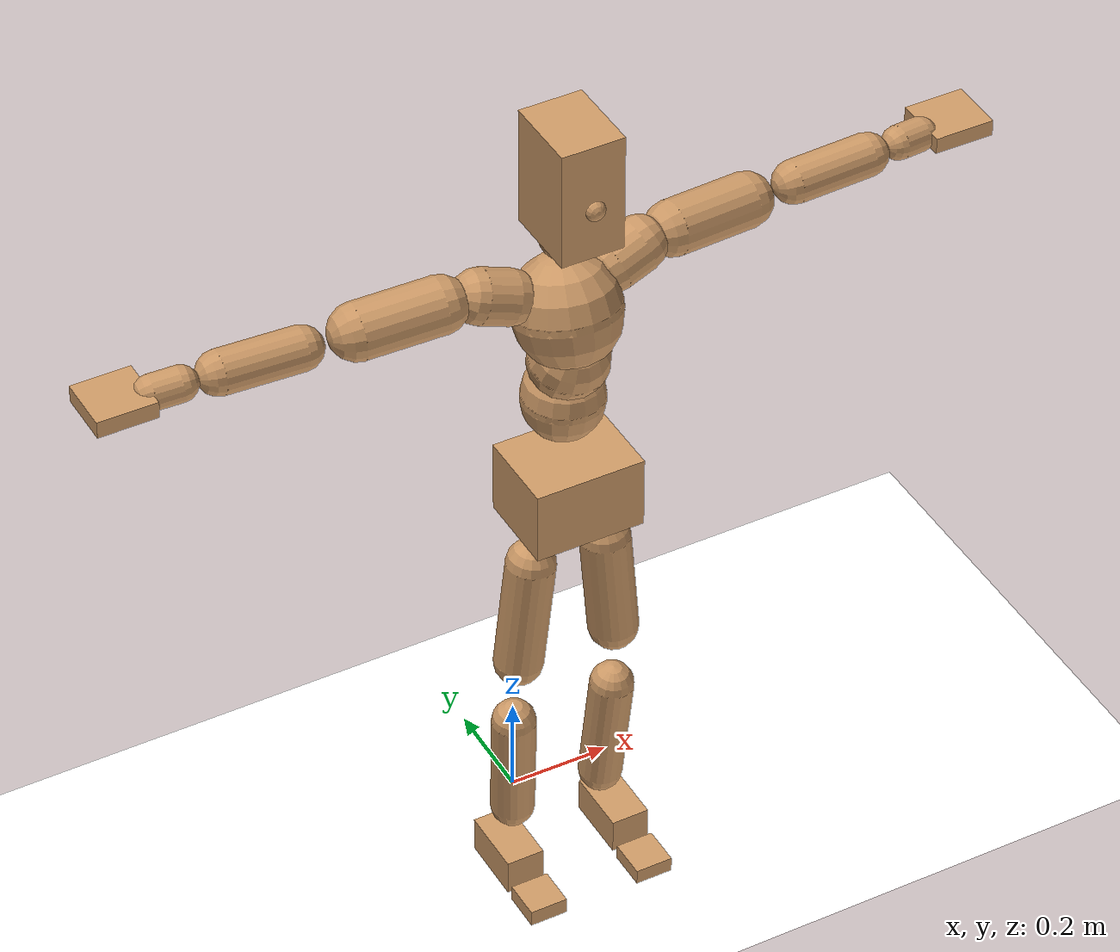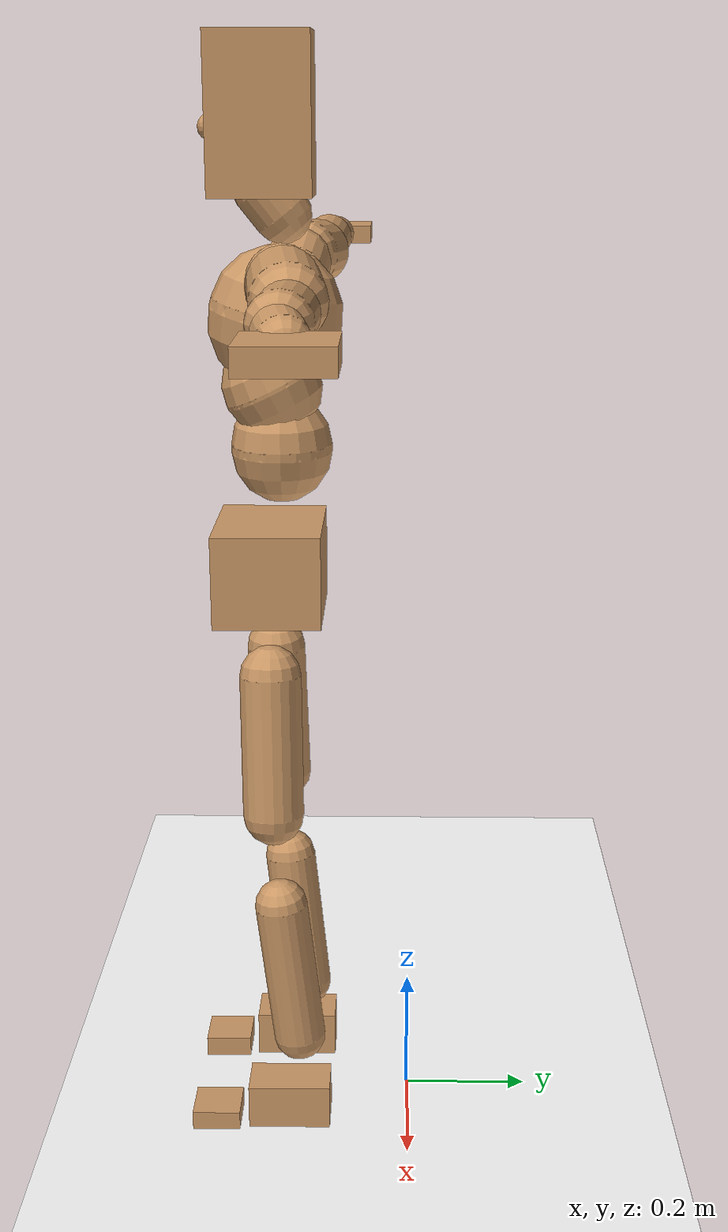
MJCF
<mujoco model="humanoid">
  <option integrator="implicitfast" />

  <visual>
    <global offwidth="1280" offheight="960" />
    <headlight active="1" ambient="0.34 0.34 0.34" diffuse="0.5 0.5 0.5" />
  </visual>

  <default>
    <joint damping="2" stiffness="2" armature="0.01" limited="true" solimplimit="0 .99 .01" />
    <geom condim="1" friction="0.7 0.005 0.0001" solimp=".99 .99 .003" solref="0.015 1" margin="0.001" rgba="0.8 0.6 .4 1" />
    <default class="smplcontact">
      <geom condim="3" friction="1. 0.005 0.0001" solref="0.015 1" solimp="0.98 0.98 0.001" priority="1" />
    </default>
    <default class="stiff_medium">
      <joint stiffness="10" />
    </default>
    <default class="stiff_medium_higher">
      <joint stiffness="50" />
    </default>
    <default class="stiff_high">
      <joint stiffness="100" />
    </default>
  </default>

  <asset>
    <texture type="skybox" builtin="gradient" rgb1="0.99 0.99 0.99" rgb2="0.608 0.828 0.892" width="100" />
    <texture builtin="flat" height="1278" mark="cross" markrgb="1 1 1" name="texgeom" random="0.01" rgb1="0.8 0.6 0.4" rgb2="0.8 0.6 0.4" type="cube" width="127" />
    <texture name="texplane" type="2d" builtin="checker" markrgb="1 1 1" rgb1="0.756 0.772 0.76" rgb2="0.6 0.6 0.6" width="100" height="100" />
    <material name="MatPlane" reflectance="0.5" texture="texplane" texrepeat="1 1" texuniform="true" />
    <material name="geom" texture="texgeom" texuniform="true" />
  </asset>

  <worldbody>
    <light name="tracking_light" pos="0 0 7" dir="0 0 -1" directional="true" cutoff="100" exponent="1" diffuse="1 1 1" specular="0.1 0.1 0.1" mode="trackcom" />
    <camera name="back" pos="0 3 2.4" xyaxes="-1 0 0 0 -1 2" mode="trackcom" />
    <camera name="side" pos="-3 0 2.4" xyaxes="0 -1 0 1 0 2" mode="trackcom" />
    <camera name="front_side" pos="-2.8 -2.8 0.8" xyaxes="0.5 -0.5 0 0.1 0.1 1" mode="trackcom" />
    <geom condim="3" name="floor" pos="0 0 0" rgba="1 1 1 1" size="100 100 .2" type="plane" material="MatPlane" />
    <body name="Pelvis" pos="-0.0018 -0.2233 0.93184" euler="90 0 0">
      <site name="Pelvis" size="0.01" />
      <freejoint name="Pelvis" />
      <geom type="box" pos="-0.0000 -0.0121 -0.0055" size="0.1069 0.0722 0.083" quat="1.0000 0.0000 0.0000 0.0000" density="3165.830099" name="Pelvis" />
      <body name="L_Hip" pos="0.0695 -0.0914 -0.0068">
        <joint name="L_Hip_x" type="hinge" pos="0 0 0" axis="1 0 0" stiffness="5.554494285714285" range="-160.0 22.92" class="stiff_medium" damping="8.195542597702891" armature="0.0053743801378210556"/>
        <joint name="L_Hip_y" type="hinge" pos="0 0 0" axis="0 1 0" stiffness="5.53058" range="-70.0 70.0" class="stiff_medium" damping="4.775965200753143" armature="0.004124313109801325"/>
        <joint name="L_Hip_z" type="hinge" pos="0 0 0" axis="0 0 1" stiffness="5.536174404761905" range="-28.65 90.0" class="stiff_medium" damping="5.455597172700658" armature="0.005376192716251588"/>
        <geom type="capsule" density="2040.816327" fromto="0.0069 -0.075 -0.0009 0.0274 -0.3002 -0.0036" size="0.0476625" name="L_Hip" />
        <body name="L_Knee" pos="0.0343 -0.3752 -0.0045">
          <joint name="L_Knee_x" type="hinge" pos="0 0 0" axis="1 0 0" range="-5.16 171.89" damping="4.197903091661377" armature="0.0051166875365785255" stiffness="1.0762816666666666"/>
          <joint name="L_Knee_y" type="hinge" pos="0 0 0" axis="0 1 0" range="-4.58 6.88" damping="3.7188163910746064" armature="0.003924180140034708" stiffness="1.101312476190476"/>
          <joint name="L_Knee_z" type="hinge" pos="0 0 0" axis="0 0 1" range="-6.88 4.58" damping="4.197475355837298" armature="0.0051249319014398335" stiffness="1.0743313095238096"/>
          <geom type="capsule" density="1234.567901" fromto="-0.0027 -0.0796 -0.0087 -0.0109 -0.3184 -0.035" size="0.0419275" name="L_Knee" />
          <body name="L_Ankle" pos="-0.0136 -0.398 -0.0437">
            <joint name="L_Ankle_x" type="hinge" pos="0 0 0" axis="1 0 0" range="-45.84 45.84" class="stiff_medium" damping="2.5950063347211563" armature="0.004018551942854063" stiffness="4.65484"/>
            <joint name="L_Ankle_y" type="hinge" pos="0 0 0" axis="0 1 0" range="-74.48 22.92" class="stiff_medium" damping="1.2901386446925456" armature="0.003973063455407271" stiffness="4.65484"/>
            <joint name="L_Ankle_z" type="hinge" pos="0 0 0" axis="0 0 1" range="-4.58 4.58" class="stiff_medium" damping="2.481693714623758" armature="0.00367526876040319" stiffness="4.65484"/>
            <geom type="box" pos="0.0233 -0.0239 0.0242" size="0.0374325 0.03596 0.065875" quat="1.0000 0.0000 0.0000 0.0000" density="449.071558" name="L_Ankle" class="smplcontact" />
            <body name="L_Toe" pos="0.0264 -0.0558 0.1193">
              <joint name="L_Toe_x" type="hinge" pos="0 0 0" axis="1 0 0" range="-91.67 22.92" armature="0.003502595584600244" damping="0.8075647845472361" stiffness="0.930968"/>
              <joint name="L_Toe_y" type="hinge" pos="0 0 0" axis="0 1 0" range="-4.58 4.58" armature="0.003293799136440615" damping="0.7831247147745812" stiffness="0.930968"/>
              <joint name="L_Toe_z" type="hinge" pos="0 0 0" axis="0 0 1" range="-4.58 4.58" armature="0.0028716239566773595" damping="0.7312167957179332" stiffness="0.930968"/>
              <geom type="box" pos="-0.003 0.0055 0.0248" size="0.037045 0.0155 0.03844" quat="1.0000 0.0000 0.0000 0.0000" density="423.206892" name="L_Toe" class="smplcontact" />
            </body>
          </body>
        </body>
      </body>
      <body name="R_Hip" pos="-0.0677 -0.0905 -0.0043">
        <joint name="R_Hip_x" type="hinge" pos="0 0 0" axis="1 0 0" stiffness="5.554494285714285" range="-160.0 22.92" class="stiff_medium" damping="8.195542597702891" armature="0.0053743801378210556"/>
        <joint name="R_Hip_y" type="hinge" pos="0 0 0" axis="0 1 0" stiffness="5.53058" range="-70.0 70.0" class="stiff_medium" damping="4.775965200753143" armature="0.004124313109801325"/>
        <joint name="R_Hip_z" type="hinge" pos="0 0 0" axis="0 0 1" stiffness="5.536174404761905" range="-90.0 28.65" class="stiff_medium" damping="5.455597172700658" armature="0.005376192716251588"/>
        <geom type="capsule" density="2040.816327" fromto="-0.0077 -0.0765 -0.0018 -0.0306 -0.3061 -0.0071" size="0.046965" name="R_Hip" />
        <body name="R_Knee" pos="-0.0383 -0.3826 -0.0089">
          <joint name="R_Knee_x" type="hinge" pos="0 0 0" axis="1 0 0" range="-5.16 171.89" damping="4.197903091661377" armature="0.0051166875365785255" stiffness="1.0762816666666666"/>
          <joint name="R_Knee_y" type="hinge" pos="0 0 0" axis="0 1 0" range="-6.88 4.58" damping="3.7188163910746064" armature="0.003924180140034708" stiffness="1.101312476190476"/>
          <joint name="R_Knee_z" type="hinge" pos="0 0 0" axis="0 0 1" range="-4.58 6.88" damping="4.197475355837298" armature="0.0051249319014398335" stiffness="1.0743313095238096"/>
          <geom type="capsule" density="1234.567901" fromto="0.0032 -0.0797 -0.0085 0.0126 -0.3187 -0.0338" size="0.0419275" name="R_Knee" />
          <body name="R_Ankle" pos="0.0158 -0.3984 -0.0423">
            <joint name="R_Ankle_x" type="hinge" pos="0 0 0" axis="1 0 0" range="-45.84 45.84" class="stiff_medium" damping="2.5950063347211563" armature="0.004018551942854063" stiffness="4.65484"/>
            <joint name="R_Ankle_y" type="hinge" pos="0 0 0" axis="0 1 0" range="-22.92 74.48" class="stiff_medium" damping="1.2901386446925456" armature="0.003973063455407271" stiffness="4.65484"/>
            <joint name="R_Ankle_z" type="hinge" pos="0 0 0" axis="0 0 1" range="-4.58 4.58" class="stiff_medium" damping="2.481693714623758" armature="0.00367526876040319" stiffness="4.65484"/>
            <geom type="box" pos="-0.0212 -0.0174 0.0256" size="0.0374325 0.037045 0.0670375" quat="1.0000 0.0000 0.0000 0.0000" density="434.700981" name="R_Ankle" class="smplcontact" />
            <body name="R_Toe" pos="-0.0254 -0.0481 0.1233">
              <joint name="R_Toe_x" type="hinge" pos="0 0 0" axis="1 0 0" range="-91.67 22.92" armature="0.003502595584600244" damping="0.8075647845472361" stiffness="0.930968"/>
              <joint name="R_Toe_y" type="hinge" pos="0 0 0" axis="0 1 0" range="-4.58 4.58" armature="0.003293799136440615" damping="0.7831247147745812" stiffness="0.930968"/>
              <joint name="R_Toe_z" type="hinge" pos="0 0 0" axis="0 0 1" range="-4.58 4.58" armature="0.0028716239566773595" damping="0.7312167957179332" stiffness="0.930968"/>
              <geom type="box" pos="0.0042 0.0045 0.0227" size="0.0371225 0.01674 0.0382075" quat="1.0000 0.0000 0.0000 0.0000" density="407.384095" name="R_Toe" class="smplcontact" />
            </body>
          </body>
        </body>
      </body>
      <body name="Torso" pos="-0.0025 0.109 -0.0267">
        <joint name="Torso_x" type="hinge" pos="0 0 0" axis="1 0 0" range="-25.78 57.3" class="stiff_medium" damping="15.0" armature="0.010000000000000002" stiffness="10.0"/>
        <joint name="Torso_y" type="hinge" pos="0 0 0" axis="0 1 0" range="-57.3 57.3" class="stiff_high" damping="20.0" armature="0.010000000000000002" stiffness="100.0"/>
        <joint name="Torso_z" type="hinge" pos="0 0 0" axis="0 0 1" range="-34.38 34.38" class="stiff_high" damping="20.0" armature="0.010000000000000002" stiffness="100.0"/>
        <geom type="capsule" density="2040.816327" fromto="0.0025 0.0608 0.0005 0.003 0.0743 0.0006" size="0.0769" name="Torso" />
        <body name="Spine" pos="0.0055 0.1352 0.0011">
          <joint name="Spine_x" type="hinge" pos="0 0 0" axis="1 0 0" stiffness="10.0" range="-25.78 57.3" class="stiff_medium" damping="15.000000000000004" armature="0.010000000000000007"/>
          <joint name="Spine_y" type="hinge" pos="0 0 0" axis="0 1 0" stiffness="10.0" range="-57.3 57.3" class="stiff_high" damping="8.0" armature="0.010000000000000002"/>
          <joint name="Spine_z" type="hinge" pos="0 0 0" axis="0 0 1" stiffness="20.0" range="-34.38 34.38" class="stiff_high" damping="12.000000000000004" armature="0.010000000000000007"/>
          <geom type="capsule" density="2040.816327" fromto="0.0007 0.0238 0.0114 0.0008 0.0291 0.014" size="0.0755" name="Spine" />
          <body name="Chest" pos="0.0015 0.0529 0.0254">
            <joint name="Chest_x" type="hinge" pos="0 0 0" axis="1 0 0" stiffness="10.0" range="-25.78 57.3" class="stiff_medium" damping="14.999999999999996" armature="0.009999999999999997"/>
            <joint name="Chest_y" type="hinge" pos="0 0 0" axis="0 1 0" stiffness="10.0" range="-57.3 57.3" class="stiff_high" damping="8.000000000000002" armature="0.010000000000000005"/>
            <joint name="Chest_z" type="hinge" pos="0 0 0" axis="0 0 1" stiffness="20.0" range="-34.38 34.38" class="stiff_high" damping="12.0" armature="0.01"/>
            <geom type="capsule" density="2040.816327" fromto="-0.0009 0.0682 -0.0173 -0.001 0.0833 -0.0212" size="0.1002" name="Chest" />
            <body name="Neck" pos="-0.0028 0.2139 -0.0429">
              <joint name="Neck_x" type="hinge" pos="0 0 0" axis="1 0 0" range="-28.65 57.3" class="stiff_medium_higher" damping="9.999999999999993" armature="0.009999999999999988" stiffness="50.0"/>
              <joint name="Neck_y" type="hinge" pos="0 0 0" axis="0 1 0" range="-40.11 40.11" class="stiff_medium_higher" damping="10.0" armature="0.010000000000000002" stiffness="50.0"/>
              <joint name="Neck_z" type="hinge" pos="0 0 0" axis="0 0 1" range="-40.11 40.11" class="stiff_medium_higher" damping="9.999999999999998" armature="0.009999999999999995" stiffness="50.0"/>
              <geom type="capsule" density="1000" fromto="0.001 0.013 0.0103 0.0041 0.052 0.0411" size="0.0436" name="Neck" />
              <body name="Head" pos="0.0052 0.065 0.0513">
                <joint name="Head_x" type="hinge" pos="0 0 0" axis="1 0 0" range="-28.65 57.3" class="stiff_medium_higher" damping="1.9999999999999967" armature="0.009999999999999967" stiffness="50.0"/>
                <joint name="Head_y" type="hinge" pos="0 0 0" axis="0 1 0" range="-40.11 40.11" class="stiff_medium_higher" damping="1.9999999999999998" armature="0.009999999999999998" stiffness="50.0"/>
                <joint name="Head_z" type="hinge" pos="0 0 0" axis="0 0 1" range="-40.11 40.11" class="stiff_medium_higher" damping="1.9999999999999978" armature="0.00999999999999998" stiffness="50.0"/>
                <geom type="box" pos="-0.0042 0.0876 -0.0116" size="0.0606 0.1154 0.076" quat="1.0000 0.0000 0.0000 0.0000" density="1018.069894" name="Head" />
                <geom type="capsule" name="nose" size="0.02 0.01" pos="0 0.07 0.05" quat="1 0 0 0" mass="0" contype="0" conaffinity="0" />
              </body>
            </body>
            <body name="L_Thorax" pos="0.0788 0.1217 -0.0341">
              <joint name="L_Thorax_x" type="hinge" pos="0 0 0" axis="1 0 0" range="-10.89 4.58" class="stiff_medium_higher" damping="20.000000000000142" armature="0.010000000000000142" stiffness="50.0"/>
              <joint name="L_Thorax_y" type="hinge" pos="0 0 0" axis="0 1 0" range="-28.65 17.19" class="stiff_medium_higher" damping="20.000000000000004" armature="0.010000000000000005" stiffness="50.0"/>
              <joint name="L_Thorax_z" type="hinge" pos="0 0 0" axis="0 0 1" range="-31.51 40.11" class="stiff_medium_higher" damping="20.000000000000004" armature="0.010000000000000007" stiffness="50.0"/>
              <geom type="capsule" density="1000" fromto="0.0182 0.0061 -0.0018 0.0728 0.0244 -0.0071" size="0.0521" name="L_Thorax" />
              <body name="L_Shoulder" pos="0.091 0.0305 -0.0089">
                <joint name="L_Shoulder_x" type="hinge" pos="0 0 0" axis="1 0 0" range="-97.4 97.4" class="stiff_medium" damping="6.000000000000092" armature="0.010000000000000307" stiffness="10.0"/>
                <joint name="L_Shoulder_y" type="hinge" pos="0 0 0" axis="0 1 0" range="-108.86 80.21" class="stiff_medium" damping="6.0" armature="0.010000000000000002" stiffness="10.0"/>
                <joint name="L_Shoulder_z" type="hinge" pos="0 0 0" axis="0 0 1" range="-97.4 85.94" class="stiff_medium" damping="6.000000000000003" armature="0.01000000000000001" stiffness="10.0"/>
                <geom type="capsule" density="1000" fromto="0.0519 -0.0026 -0.0055 0.2077 -0.0102 -0.022" size="0.0517" name="L_Shoulder" />
                <body name="L_Elbow" pos="0.2596 -0.0128 -0.0275">
                  <joint name="L_Elbow_x" type="hinge" pos="0 0 0" axis="1 0 0" range="-17.19 4.58" damping="4.9999999999999645" armature="0.009999999999999858" stiffness="2.0"/>
                  <joint name="L_Elbow_y" type="hinge" pos="0 0 0" axis="0 1 0" range="-180.0 17.19" damping="5.000000000000004" armature="0.010000000000000021" stiffness="2.0"/>
                  <joint name="L_Elbow_z" type="hinge" pos="0 0 0" axis="0 0 1" range="-100.84 4.58" damping="5.000000000000004" armature="0.010000000000000018" stiffness="2.0"/>
                  <geom type="capsule" density="1000" fromto="0.0498 0.0018 -0.0002 0.1994 0.0072 -0.0009" size="0.0405" name="L_Elbow" />
                  <body name="L_Wrist" pos="0.2492 0.009 -0.0012">
                    <joint name="L_Wrist_x" type="hinge" pos="0 0 0" axis="1 0 0" range="-180.0 22.92" armature="0.009999999999999789" damping="1.9999999999999787" stiffness="2.0"/>
                    <joint name="L_Wrist_y" type="hinge" pos="0 0 0" axis="0 1 0" range="-17.19 17.19" armature="0.009999999999999957" damping="1.9999999999999956" stiffness="2.0"/>
                    <joint name="L_Wrist_z" type="hinge" pos="0 0 0" axis="0 0 1" range="-22.92 22.92" armature="0.009999999999999995" damping="1.9999999999999996" stiffness="2.0"/>
                    <geom type="capsule" density="1000" fromto="0.0168 -0.0016 -0.003 0.0672 -0.0065 -0.012" size="0.0318" name="L_Wrist" class="smplcontact" />
                    <body name="L_Hand" pos="0.084 -0.0082 -0.0149">
                      <joint name="L_Hand_x" type="hinge" pos="0 0 0" axis="1 0 0" range="-17.19 17.19" armature="0.009999999999999908" damping="1.9999999999999907" stiffness="2.0"/>
                      <joint name="L_Hand_y" type="hinge" pos="0 0 0" axis="0 1 0" range="-51.57 51.57" armature="0.009999999999999879" damping="1.9999999999999878" stiffness="2.0"/>
                      <joint name="L_Hand_z" type="hinge" pos="0 0 0" axis="0 0 1" range="-91.67 91.67" armature="0.009999999999999445" damping="1.9999999999999445" stiffness="2.0"/>
                      <geom type="box" pos="0.0493 0.001 -0.0058" size="0.0585 0.0158 0.0538" quat="1.0000 0.0000 0.0000 0.0000" density="400.552564" name="L_Hand" class="smplcontact" />
                    </body>
                  </body>
                </body>
              </body>
            </body>
            <body name="R_Thorax" pos="-0.0818 0.1188 -0.0386">
              <joint name="R_Thorax_x" type="hinge" pos="0 0 0" axis="1 0 0" range="-10.89 4.58" class="stiff_medium_higher" damping="20.000000000000142" armature="0.010000000000000142" stiffness="50.0"/>
              <joint name="R_Thorax_y" type="hinge" pos="0 0 0" axis="0 1 0" range="-17.19 28.65" class="stiff_medium_higher" damping="20.000000000000004" armature="0.010000000000000005" stiffness="50.0"/>
              <joint name="R_Thorax_z" type="hinge" pos="0 0 0" axis="0 0 1" range="-40.11 31.51" class="stiff_medium_higher" damping="20.000000000000004" armature="0.010000000000000007" stiffness="50.0"/>
              <geom type="capsule" density="1000" fromto="-0.0192 0.0065 -0.0018 -0.0768 0.026 -0.0073" size="0.0511" name="R_Thorax" />
              <body name="R_Shoulder" pos="-0.096 0.0326 -0.0091">
                <joint name="R_Shoulder_x" type="hinge" pos="0 0 0" axis="1 0 0" range="-97.4 97.4" class="stiff_medium" damping="6.000000000000092" armature="0.010000000000000307" stiffness="10.0"/>
                <joint name="R_Shoulder_y" type="hinge" pos="0 0 0" axis="0 1 0" range="-80.21 108.86" class="stiff_medium" damping="6.0" armature="0.010000000000000002" stiffness="10.0"/>
                <joint name="R_Shoulder_z" type="hinge" pos="0 0 0" axis="0 0 1" range="-85.94 97.4" class="stiff_medium" damping="6.000000000000003" armature="0.01000000000000001" stiffness="10.0"/>
                <geom type="capsule" density="1000" fromto="-0.0507 -0.0027 -0.0043 -0.203 -0.0107 -0.0171" size="0.0531" name="R_Shoulder" />
                <body name="R_Elbow" pos="-0.2537 -0.0133 -0.0214">
                  <joint name="R_Elbow_x" type="hinge" pos="0 0 0" axis="1 0 0" range="-17.19 4.58" damping="4.9999999999999645" armature="0.009999999999999858" stiffness="2.0"/>
                  <joint name="R_Elbow_y" type="hinge" pos="0 0 0" axis="0 1 0" range="-17.19 180.0" damping="5.000000000000004" armature="0.010000000000000021" stiffness="2.0"/>
                  <joint name="R_Elbow_z" type="hinge" pos="0 0 0" axis="0 0 1" range="-4.58 100.84" damping="5.000000000000004" armature="0.010000000000000018" stiffness="2.0"/>
                  <geom type="capsule" density="1000" fromto="-0.0511 0.0016 -0.0011 -0.2042 0.0062 -0.0044" size="0.0408" name="R_Elbow" />
                  <body name="R_Wrist" pos="-0.2553 0.0078 -0.0056">
                    <joint name="R_Wrist_x" type="hinge" pos="0 0 0" axis="1 0 0" range="-180.0 22.92" armature="0.009999999999999789" damping="1.9999999999999787" stiffness="2.0"/>
                    <joint name="R_Wrist_y" type="hinge" pos="0 0 0" axis="0 1 0" range="-17.19 17.19" armature="0.009999999999999957" damping="1.9999999999999956" stiffness="2.0"/>
                    <joint name="R_Wrist_z" type="hinge" pos="0 0 0" axis="0 0 1" range="-22.92 22.92" armature="0.009999999999999995" damping="1.9999999999999996" stiffness="2.0"/>
                    <geom type="capsule" density="1000" fromto="-0.0169 -0.0012 -0.0021 -0.0677 -0.0049 -0.0083" size="0.0326" name="R_Wrist" class="smplcontact" />
                    <body name="R_Hand" pos="-0.0846 -0.0061 -0.0103">
                      <joint name="R_Hand_x" type="hinge" pos="0 0 0" axis="1 0 0" range="-17.19 17.19" armature="0.009999999999999908" damping="1.9999999999999907" stiffness="2.0"/>
                      <joint name="R_Hand_y" type="hinge" pos="0 0 0" axis="0 1 0" range="-51.57 51.57" armature="0.009999999999999879" damping="1.9999999999999878" stiffness="2.0"/>
                      <joint name="R_Hand_z" type="hinge" pos="0 0 0" axis="0 0 1" range="-91.67 91.67" armature="0.009999999999999445" damping="1.9999999999999445" stiffness="2.0"/>
                      <geom type="box" pos="-0.0462 -0.0009 -0.0079" size="0.0569 0.0164 0.0546" quat="1.0000 0.0000 0.0000 0.0000" density="403.679611" name="R_Hand" class="smplcontact" />
                    </body>
                  </body>
                </body>
              </body>
            </body>
          </body>
        </body>
      </body>
    </body>
  </worldbody>
  <actuator>
    <general name="L_Hip_x" joint="L_Hip_x" biastype="affine" gainprm="159.5973199142497" biasprm="-119.60201516425404 -99.98089714285713 -1.0927390130270522" ctrllimited="true" ctrlrange="-1 1" forcerange="-199.96179428571426 199.96179428571426" />
    <general name="L_Hip_y" joint="L_Hip_y" biastype="affine" gainprm="121.62380648663445" biasprm="0.0 -99.55044 -0.9551930401506287" ctrllimited="true" ctrlrange="-1 1" forcerange="-199.10088 199.10088" />
    <general name="L_Hip_z" joint="L_Hip_z" biastype="affine" gainprm="103.18044170731912" biasprm="53.35120184360748 -99.65113928571428 -1.0911194345401316" ctrllimited="true" ctrlrange="-1 1" forcerange="-199.30227857142856 199.30227857142856" />
    <general name="L_Knee_x" joint="L_Knee_x" biastype="affine" gainprm="149.66207252302192" biasprm="140.938476993863 -96.86534999999999 -1.0494757729153443" ctrllimited="true" ctrlrange="-1 1" forcerange="-193.73069999999998 193.73069999999998" />
    <general name="L_Knee_y" joint="L_Knee_y" biastype="affine" gainprm="9.912542403611933" biasprm="1.9894282310914004 -99.11812285714284 -0.9297040977686516" ctrllimited="true" ctrlrange="-1 1" forcerange="-198.23624571428567 198.23624571428567" />
    <general name="L_Knee_z" joint="L_Knee_z" biastype="affine" gainprm="9.669694016379104" biasprm="-1.940689025974864 -96.68981785714287 -1.0493688389593245" ctrllimited="true" ctrlrange="-1 1" forcerange="-193.37963571428574 193.37963571428574" />
    <general name="L_Ankle_x" joint="L_Ankle_x" biastype="affine" gainprm="33.51731675038152" biasprm="0.0 -41.89356 -0.8650021115737188" ctrllimited="true" ctrlrange="-1 1" forcerange="-83.78712 83.78712" />
    <general name="L_Ankle_y" joint="L_Ankle_y" biastype="affine" gainprm="35.60849314449345" biasprm="-18.849834769302696 -41.89356 -0.8600924297950304" ctrllimited="true" ctrlrange="-1 1" forcerange="-83.78712 83.78712" />
    <general name="L_Ankle_z" joint="L_Ankle_z" biastype="affine" gainprm="3.3488069528086237" biasprm="0.0 -41.89356 -0.8272312382079193" ctrllimited="true" ctrlrange="-1 1" forcerange="-83.78712 83.78712" />
    <general name="L_Toe_x" joint="L_Toe_x" biastype="affine" gainprm="33.51439202815198" biasprm="-20.10746532799938 -33.514848 -0.32302591381889445" ctrllimited="true" ctrlrange="-1 1" forcerange="-67.029696 67.029696" />
    <general name="L_Toe_y" joint="L_Toe_y" biastype="affine" gainprm="2.679045562246899" biasprm="0.0 -33.514848 -0.3132498859098325" ctrllimited="true" ctrlrange="-1 1" forcerange="-67.029696 67.029696" />
    <general name="L_Toe_z" joint="L_Toe_z" biastype="affine" gainprm="2.679045562246899" biasprm="0.0 -33.514848 -0.29248671828717326" ctrllimited="true" ctrlrange="-1 1" forcerange="-67.029696 67.029696" />
    <general name="R_Hip_x" joint="R_Hip_x" biastype="affine" gainprm="159.5973199142497" biasprm="-119.60201516425404 -99.98089714285713 -1.0927390130270522" ctrllimited="true" ctrlrange="-1 1" forcerange="-199.96179428571426 199.96179428571426" />
    <general name="R_Hip_y" joint="R_Hip_y" biastype="affine" gainprm="121.62380648663445" biasprm="0.0 -99.55044 -0.9551930401506287" ctrllimited="true" ctrlrange="-1 1" forcerange="-199.10088 199.10088" />
    <general name="R_Hip_z" joint="R_Hip_z" biastype="affine" gainprm="103.18044170731912" biasprm="-53.35120184360748 -99.65113928571428 -1.0911194345401316" ctrllimited="true" ctrlrange="-1 1" forcerange="-199.30227857142856 199.30227857142856" />
    <general name="R_Knee_x" joint="R_Knee_x" biastype="affine" gainprm="149.66207252302192" biasprm="140.938476993863 -96.86534999999999 -1.0494757729153443" ctrllimited="true" ctrlrange="-1 1" forcerange="-193.73069999999998 193.73069999999998" />
    <general name="R_Knee_y" joint="R_Knee_y" biastype="affine" gainprm="9.912542403611933" biasprm="-1.9894282310914004 -99.11812285714284 -0.9297040977686516" ctrllimited="true" ctrlrange="-1 1" forcerange="-198.23624571428567 198.23624571428567" />
    <general name="R_Knee_z" joint="R_Knee_z" biastype="affine" gainprm="9.669694016379104" biasprm="1.940689025974864 -96.68981785714287 -1.0493688389593245" ctrllimited="true" ctrlrange="-1 1" forcerange="-193.37963571428574 193.37963571428574" />
    <general name="R_Ankle_x" joint="R_Ankle_x" biastype="affine" gainprm="33.51731675038152" biasprm="0.0 -41.89356 -0.8650021115737188" ctrllimited="true" ctrlrange="-1 1" forcerange="-83.78712 83.78712" />
    <general name="R_Ankle_y" joint="R_Ankle_y" biastype="affine" gainprm="35.60849314449345" biasprm="18.849834769302696 -41.89356 -0.8600924297950304" ctrllimited="true" ctrlrange="-1 1" forcerange="-83.78712 83.78712" />
    <general name="R_Ankle_z" joint="R_Ankle_z" biastype="affine" gainprm="3.3488069528086237" biasprm="0.0 -41.89356 -0.8272312382079193" ctrllimited="true" ctrlrange="-1 1" forcerange="-83.78712 83.78712" />
    <general name="R_Toe_x" joint="R_Toe_x" biastype="affine" gainprm="33.51439202815198" biasprm="-20.10746532799938 -33.514848 -0.32302591381889445" ctrllimited="true" ctrlrange="-1 1" forcerange="-67.029696 67.029696" />
    <general name="R_Toe_y" joint="R_Toe_y" biastype="affine" gainprm="2.679045562246899" biasprm="0.0 -33.514848 -0.3132498859098325" ctrllimited="true" ctrlrange="-1 1" forcerange="-67.029696 67.029696" />
    <general name="R_Toe_z" joint="R_Toe_z" biastype="affine" gainprm="2.679045562246899" biasprm="0.0 -33.514848 -0.29248671828717326" ctrllimited="true" ctrlrange="-1 1" forcerange="-67.029696 67.029696" />
    <general name="Torso_x" joint="Torso_x" biastype="affine" gainprm="174.00234510682668" biasprm="66.0153336274335 -240.0 -4.0" ctrllimited="true" ctrlrange="-1 1" forcerange="-360.0 360.0" />
    <general name="Torso_y" joint="Torso_y" biastype="affine" gainprm="240.0176787342602" biasprm="0.0 -240.0 -4.0" ctrllimited="true" ctrlrange="-1 1" forcerange="-360.0 360.0" />
    <general name="Torso_z" joint="Torso_z" biastype="affine" gainprm="144.01060724055614" biasprm="0.0 -240.0 -4.0" ctrllimited="true" ctrlrange="-1 1" forcerange="-360.0 360.0" />
    <general name="Spine_x" joint="Spine_x" biastype="affine" gainprm="174.00234510682668" biasprm="66.0153336274335 -240.0 -4.000000000000001" ctrllimited="true" ctrlrange="-1 1" forcerange="-360.0 360.0" />
    <general name="Spine_y" joint="Spine_y" biastype="affine" gainprm="240.0176787342602" biasprm="0.0 -240.0 -4.0" ctrllimited="true" ctrlrange="-1 1" forcerange="-360.0 360.0" />
    <general name="Spine_z" joint="Spine_z" biastype="affine" gainprm="144.01060724055614" biasprm="0.0 -240.0 -4.000000000000001" ctrllimited="true" ctrlrange="-1 1" forcerange="-360.0 360.0" />
    <general name="Chest_x" joint="Chest_x" biastype="affine" gainprm="174.00234510682668" biasprm="66.0153336274335 -240.0 -3.999999999999999" ctrllimited="true" ctrlrange="-1 1" forcerange="-360.0 360.0" />
    <general name="Chest_y" joint="Chest_y" biastype="affine" gainprm="240.0176787342602" biasprm="0.0 -240.0 -4.000000000000001" ctrllimited="true" ctrlrange="-1 1" forcerange="-360.0 360.0" />
    <general name="Chest_z" joint="Chest_z" biastype="affine" gainprm="144.01060724055614" biasprm="0.0 -240.0 -4.0" ctrllimited="true" ctrlrange="-1 1" forcerange="-360.0 360.0" />
    <general name="Neck_x" joint="Neck_x" biastype="affine" gainprm="27.00198885760427" biasprm="9.000662952534757 -36.0 -0.7999999999999995" ctrllimited="true" ctrlrange="-1 1" forcerange="-72.0 72.0" />
    <general name="Neck_y" joint="Neck_y" biastype="affine" gainprm="25.20185626709732" biasprm="0.0 -36.0 -0.8" ctrllimited="true" ctrlrange="-1 1" forcerange="-72.0 72.0" />
    <general name="Neck_z" joint="Neck_z" biastype="affine" gainprm="25.20185626709732" biasprm="0.0 -36.0 -0.7999999999999998" ctrllimited="true" ctrlrange="-1 1" forcerange="-72.0 72.0" />
    <general name="Head_x" joint="Head_x" biastype="affine" gainprm="18.001325905069514" biasprm="6.000441968356505 -24.0 -0.7999999999999987" ctrllimited="true" ctrlrange="-1 1" forcerange="-48.0 48.0" />
    <general name="Head_y" joint="Head_y" biastype="affine" gainprm="16.801237511398213" biasprm="0.0 -24.0 -0.7999999999999999" ctrllimited="true" ctrlrange="-1 1" forcerange="-48.0 48.0" />
    <general name="Head_z" joint="Head_z" biastype="affine" gainprm="16.801237511398213" biasprm="0.0 -24.0 -0.7999999999999992" ctrllimited="true" ctrlrange="-1 1" forcerange="-48.0 48.0" />
    <general name="L_Thorax_x" joint="L_Thorax_x" biastype="affine" gainprm="16.200146117011364" biasprm="-6.6078165480505335 -120.0 -1.6000000000000114" ctrllimited="true" ctrlrange="-1 1" forcerange="-240.0 240.0" />
    <general name="L_Thorax_y" joint="L_Thorax_y" biastype="affine" gainprm="48.00353574685204" biasprm="-12.00088393671301 -120.0 -1.6000000000000005" ctrllimited="true" ctrlrange="-1 1" forcerange="-240.0 240.0" />
    <general name="L_Thorax_z" joint="L_Thorax_z" biastype="affine" gainprm="75.00028861670033" biasprm="9.00589894029074 -120.0 -1.6000000000000005" ctrllimited="true" ctrlrange="-1 1" forcerange="-240.0 240.0" />
    <general name="L_Shoulder_x" joint="L_Shoulder_x" biastype="affine" gainprm="81.5976331892389" biasprm="0.0 -48.0 -1.6000000000000245" ctrllimited="true" ctrlrange="-1 1" forcerange="-96.0 96.0" />
    <general name="L_Shoulder_y" joint="L_Shoulder_y" biastype="affine" gainprm="79.19745640189629" biasprm="-12.00088393671301 -48.0 -1.6" ctrllimited="true" ctrlrange="-1 1" forcerange="-96.0 96.0" />
    <general name="L_Shoulder_z" joint="L_Shoulder_z" biastype="affine" gainprm="76.79727961455369" biasprm="-4.800353574685214 -48.0 -1.6000000000000008" ctrllimited="true" ctrlrange="-1 1" forcerange="-96.0 96.0" />
    <general name="L_Elbow_x" joint="L_Elbow_x" biastype="affine" gainprm="13.67849441372996" biasprm="-7.923096672353461 -72.0 -0.7999999999999944" ctrllimited="true" ctrlrange="-1 1" forcerange="-144.0 144.0" />
    <general name="L_Elbow_y" joint="L_Elbow_y" biastype="affine" gainprm="123.89813107227425" biasprm="-102.29653998619085 -72.0 -0.8000000000000007" ctrllimited="true" ctrlrange="-1 1" forcerange="-144.0 144.0" />
    <general name="L_Elbow_z" joint="L_Elbow_z" biastype="affine" gainprm="66.23733950828719" biasprm="-60.4819417669107 -72.0 -0.8000000000000007" ctrllimited="true" ctrlrange="-1 1" forcerange="-144.0 144.0" />
    <general name="L_Wrist_x" joint="L_Wrist_x" biastype="affine" gainprm="21.24973270888136" biasprm="-16.449379134196157 -12.0 -0.7999999999999915" ctrllimited="true" ctrlrange="-1 1" forcerange="-24.0 24.0" />
    <general name="L_Wrist_y" joint="L_Wrist_y" biastype="affine" gainprm="3.6002651810139037" biasprm="0.0 -12.0 -0.7999999999999983" ctrllimited="true" ctrlrange="-1 1" forcerange="-24.0 24.0" />
    <general name="L_Wrist_z" joint="L_Wrist_z" biastype="affine" gainprm="4.800353574685205" biasprm="0.0 -12.0 -0.7999999999999998" ctrllimited="true" ctrlrange="-1 1" forcerange="-24.0 24.0" />
    <general name="L_Hand_x" joint="L_Hand_x" biastype="affine" gainprm="3.6002651810139037" biasprm="0.0 -12.0 -0.7999999999999963" ctrllimited="true" ctrlrange="-1 1" forcerange="-24.0 24.0" />
    <general name="L_Hand_y" joint="L_Hand_y" biastype="affine" gainprm="10.800795543041708" biasprm="0.0 -12.0 -0.7999999999999952" ctrllimited="true" ctrlrange="-1 1" forcerange="-24.0 24.0" />
    <general name="L_Hand_z" joint="L_Hand_z" biastype="affine" gainprm="19.199319903638422" biasprm="0.0 -12.0 -0.7999999999999778" ctrllimited="true" ctrlrange="-1 1" forcerange="-24.0 24.0" />
    <general name="R_Thorax_x" joint="R_Thorax_x" biastype="affine" gainprm="16.200146117011364" biasprm="-6.6078165480505335 -120.0 -1.6000000000000114" ctrllimited="true" ctrlrange="-1 1" forcerange="-240.0 240.0" />
    <general name="R_Thorax_y" joint="R_Thorax_y" biastype="affine" gainprm="48.00353574685204" biasprm="12.000883936713002 -120.0 -1.6000000000000005" ctrllimited="true" ctrlrange="-1 1" forcerange="-240.0 240.0" />
    <general name="R_Thorax_z" joint="R_Thorax_z" biastype="affine" gainprm="75.00028861670033" biasprm="-9.00589894029074 -120.0 -1.6000000000000005" ctrllimited="true" ctrlrange="-1 1" forcerange="-240.0 240.0" />
    <general name="R_Shoulder_x" joint="R_Shoulder_x" biastype="affine" gainprm="81.5976331892389" biasprm="0.0 -48.0 -1.6000000000000245" ctrllimited="true" ctrlrange="-1 1" forcerange="-96.0 96.0" />
    <general name="R_Shoulder_y" joint="R_Shoulder_y" biastype="affine" gainprm="79.19745640189629" biasprm="12.00088393671301 -48.0 -1.6" ctrllimited="true" ctrlrange="-1 1" forcerange="-96.0 96.0" />
    <general name="R_Shoulder_z" joint="R_Shoulder_z" biastype="affine" gainprm="76.79727961455369" biasprm="4.800353574685204 -48.0 -1.6000000000000008" ctrllimited="true" ctrlrange="-1 1" forcerange="-96.0 96.0" />
    <general name="R_Elbow_x" joint="R_Elbow_x" biastype="affine" gainprm="13.67849441372996" biasprm="-7.923096672353461 -72.0 -0.7999999999999944" ctrllimited="true" ctrlrange="-1 1" forcerange="-144.0 144.0" />
    <general name="R_Elbow_y" joint="R_Elbow_y" biastype="affine" gainprm="123.89813107227425" biasprm="102.29653998619085 -72.0 -0.8000000000000007" ctrllimited="true" ctrlrange="-1 1" forcerange="-144.0 144.0" />
    <general name="R_Elbow_z" joint="R_Elbow_z" biastype="affine" gainprm="66.23733950828719" biasprm="60.481941766910694 -72.0 -0.8000000000000007" ctrllimited="true" ctrlrange="-1 1" forcerange="-144.0 144.0" />
    <general name="R_Wrist_x" joint="R_Wrist_x" biastype="affine" gainprm="21.24973270888136" biasprm="-16.449379134196157 -12.0 -0.7999999999999915" ctrllimited="true" ctrlrange="-1 1" forcerange="-24.0 24.0" />
    <general name="R_Wrist_y" joint="R_Wrist_y" biastype="affine" gainprm="3.6002651810139037" biasprm="0.0 -12.0 -0.7999999999999983" ctrllimited="true" ctrlrange="-1 1" forcerange="-24.0 24.0" />
    <general name="R_Wrist_z" joint="R_Wrist_z" biastype="affine" gainprm="4.800353574685205" biasprm="0.0 -12.0 -0.7999999999999998" ctrllimited="true" ctrlrange="-1 1" forcerange="-24.0 24.0" />
    <general name="R_Hand_x" joint="R_Hand_x" biastype="affine" gainprm="3.6002651810139037" biasprm="0.0 -12.0 -0.7999999999999963" ctrllimited="true" ctrlrange="-1 1" forcerange="-24.0 24.0" />
    <general name="R_Hand_y" joint="R_Hand_y" biastype="affine" gainprm="10.800795543041708" biasprm="0.0 -12.0 -0.7999999999999952" ctrllimited="true" ctrlrange="-1 1" forcerange="-24.0 24.0" />
    <general name="R_Hand_z" joint="R_Hand_z" biastype="affine" gainprm="19.199319903638422" biasprm="0.0 -12.0 -0.7999999999999778" ctrllimited="true" ctrlrange="-1 1" forcerange="-24.0 24.0" />
  </actuator>
  <contact>
    <exclude body1="Torso" body2="Chest" />
    <exclude body1="Head" body2="Chest" />
    <exclude body1="R_Knee" body2="R_Toe" />
    <exclude body1="R_Knee" body2="L_Ankle" />
    <exclude body1="R_Knee" body2="L_Toe" />
    <exclude body1="L_Knee" body2="L_Toe" />
    <exclude body1="L_Knee" body2="R_Ankle" />
    <exclude body1="L_Knee" body2="R_Toe" />
    <exclude body1="L_Shoulder" body2="Chest" />
    <exclude body1="R_Shoulder" body2="Chest" />
  </contact>
  <sensor>
    <framelinvel name="sensor_Pelvis_framelinvel" objtype="xbody" objname="Pelvis" />
    <framelinvel name="sensor_L_Hip_framelinvel" objtype="xbody" objname="L_Hip" />
    <framelinvel name="sensor_L_Knee_framelinvel" objtype="xbody" objname="L_Knee" />
    <framelinvel name="sensor_L_Ankle_framelinvel" objtype="xbody" objname="L_Ankle" />
    <framelinvel name="sensor_L_Toe_framelinvel" objtype="xbody" objname="L_Toe" />
    <framelinvel name="sensor_R_Hip_framelinvel" objtype="xbody" objname="R_Hip" />
    <framelinvel name="sensor_R_Knee_framelinvel" objtype="xbody" objname="R_Knee" />
    <framelinvel name="sensor_R_Ankle_framelinvel" objtype="xbody" objname="R_Ankle" />
    <framelinvel name="sensor_R_Toe_framelinvel" objtype="xbody" objname="R_Toe" />
    <framelinvel name="sensor_Torso_framelinvel" objtype="xbody" objname="Torso" />
    <framelinvel name="sensor_Spine_framelinvel" objtype="xbody" objname="Spine" />
    <framelinvel name="sensor_Chest_framelinvel" objtype="xbody" objname="Chest" />
    <framelinvel name="sensor_Neck_framelinvel" objtype="xbody" objname="Neck" />
    <framelinvel name="sensor_Head_framelinvel" objtype="xbody" objname="Head" />
    <framelinvel name="sensor_L_Thorax_framelinvel" objtype="xbody" objname="L_Thorax" />
    <framelinvel name="sensor_L_Shoulder_framelinvel" objtype="xbody" objname="L_Shoulder" />
    <framelinvel name="sensor_L_Elbow_framelinvel" objtype="xbody" objname="L_Elbow" />
    <framelinvel name="sensor_L_Wrist_framelinvel" objtype="xbody" objname="L_Wrist" />
    <framelinvel name="sensor_L_Hand_framelinvel" objtype="xbody" objname="L_Hand" />
    <framelinvel name="sensor_R_Thorax_framelinvel" objtype="xbody" objname="R_Thorax" />
    <framelinvel name="sensor_R_Shoulder_framelinvel" objtype="xbody" objname="R_Shoulder" />
    <framelinvel name="sensor_R_Elbow_framelinvel" objtype="xbody" objname="R_Elbow" />
    <framelinvel name="sensor_R_Wrist_framelinvel" objtype="xbody" objname="R_Wrist" />
    <framelinvel name="sensor_R_Hand_framelinvel" objtype="xbody" objname="R_Hand" />
    <frameangvel name="sensor_Pelvis_frameangvel" objtype="xbody" objname="Pelvis" />
    <frameangvel name="sensor_L_Hip_frameangvel" objtype="xbody" objname="L_Hip" />
    <frameangvel name="sensor_L_Knee_frameangvel" objtype="xbody" objname="L_Knee" />
    <frameangvel name="sensor_L_Ankle_frameangvel" objtype="xbody" objname="L_Ankle" />
    <frameangvel name="sensor_L_Toe_frameangvel" objtype="xbody" objname="L_Toe" />
    <frameangvel name="sensor_R_Hip_frameangvel" objtype="xbody" objname="R_Hip" />
    <frameangvel name="sensor_R_Knee_frameangvel" objtype="xbody" objname="R_Knee" />
    <frameangvel name="sensor_R_Ankle_frameangvel" objtype="xbody" objname="R_Ankle" />
    <frameangvel name="sensor_R_Toe_frameangvel" objtype="xbody" objname="R_Toe" />
    <frameangvel name="sensor_Torso_frameangvel" objtype="xbody" objname="Torso" />
    <frameangvel name="sensor_Spine_frameangvel" objtype="xbody" objname="Spine" />
    <frameangvel name="sensor_Chest_frameangvel" objtype="xbody" objname="Chest" />
    <frameangvel name="sensor_Neck_frameangvel" objtype="xbody" objname="Neck" />
    <frameangvel name="sensor_Head_frameangvel" objtype="xbody" objname="Head" />
    <frameangvel name="sensor_L_Thorax_frameangvel" objtype="xbody" objname="L_Thorax" />
    <frameangvel name="sensor_L_Shoulder_frameangvel" objtype="xbody" objname="L_Shoulder" />
    <frameangvel name="sensor_L_Elbow_frameangvel" objtype="xbody" objname="L_Elbow" />
    <frameangvel name="sensor_L_Wrist_frameangvel" objtype="xbody" objname="L_Wrist" />
    <frameangvel name="sensor_L_Hand_frameangvel" objtype="xbody" objname="L_Hand" />
    <frameangvel name="sensor_R_Thorax_frameangvel" objtype="xbody" objname="R_Thorax" />
    <frameangvel name="sensor_R_Shoulder_frameangvel" objtype="xbody" objname="R_Shoulder" />
    <frameangvel name="sensor_R_Elbow_frameangvel" objtype="xbody" objname="R_Elbow" />
    <frameangvel name="sensor_R_Wrist_frameangvel" objtype="xbody" objname="R_Wrist" />
    <frameangvel name="sensor_R_Hand_frameangvel" objtype="xbody" objname="R_Hand" />
    <subtreelinvel name="Chest_subtreelinvel" body="Chest" />
    <gyro name="Pelvis_gyro" site="Pelvis" />
  </sensor>
</mujoco>
